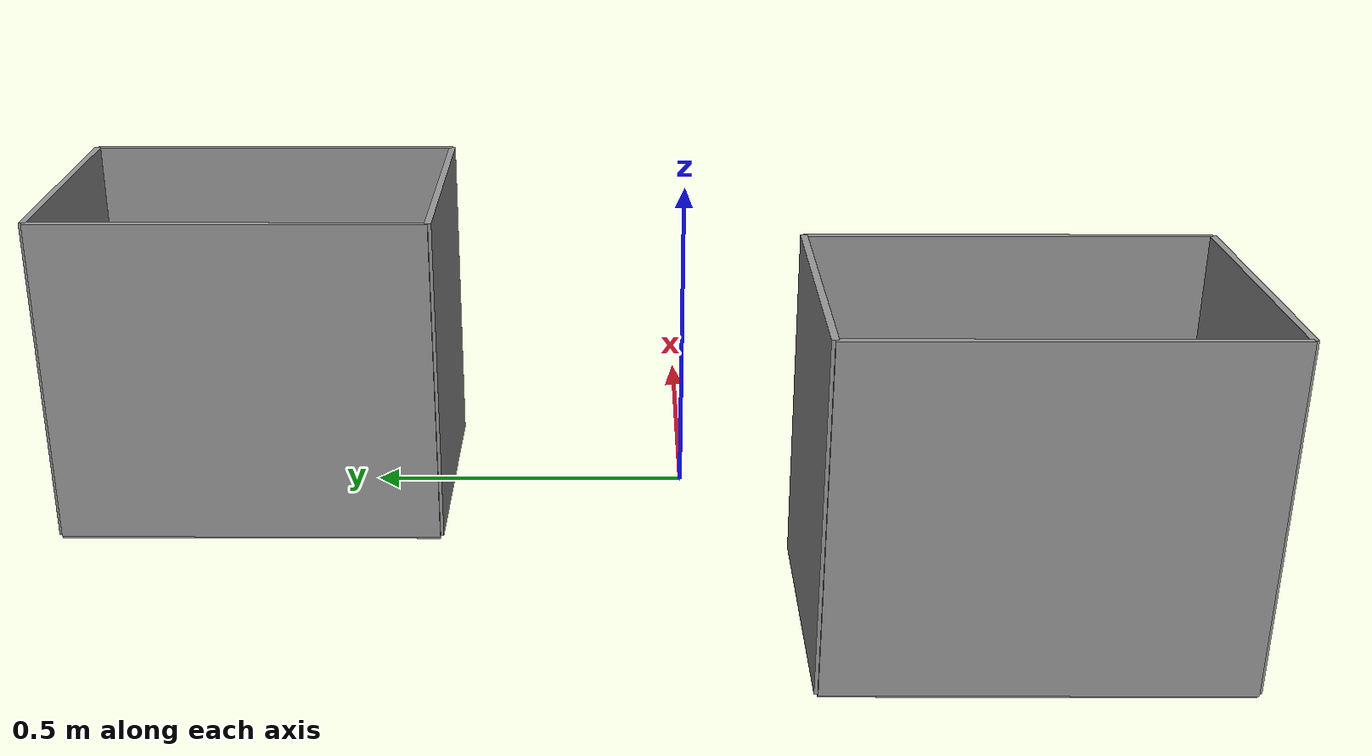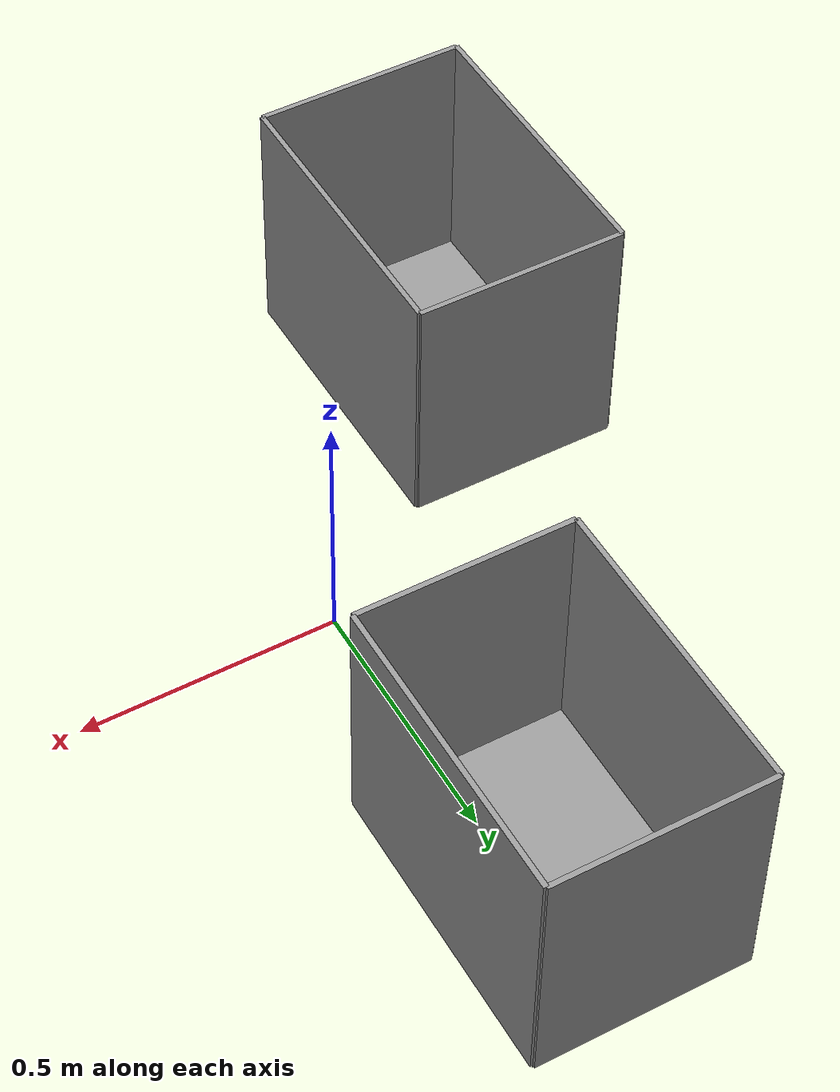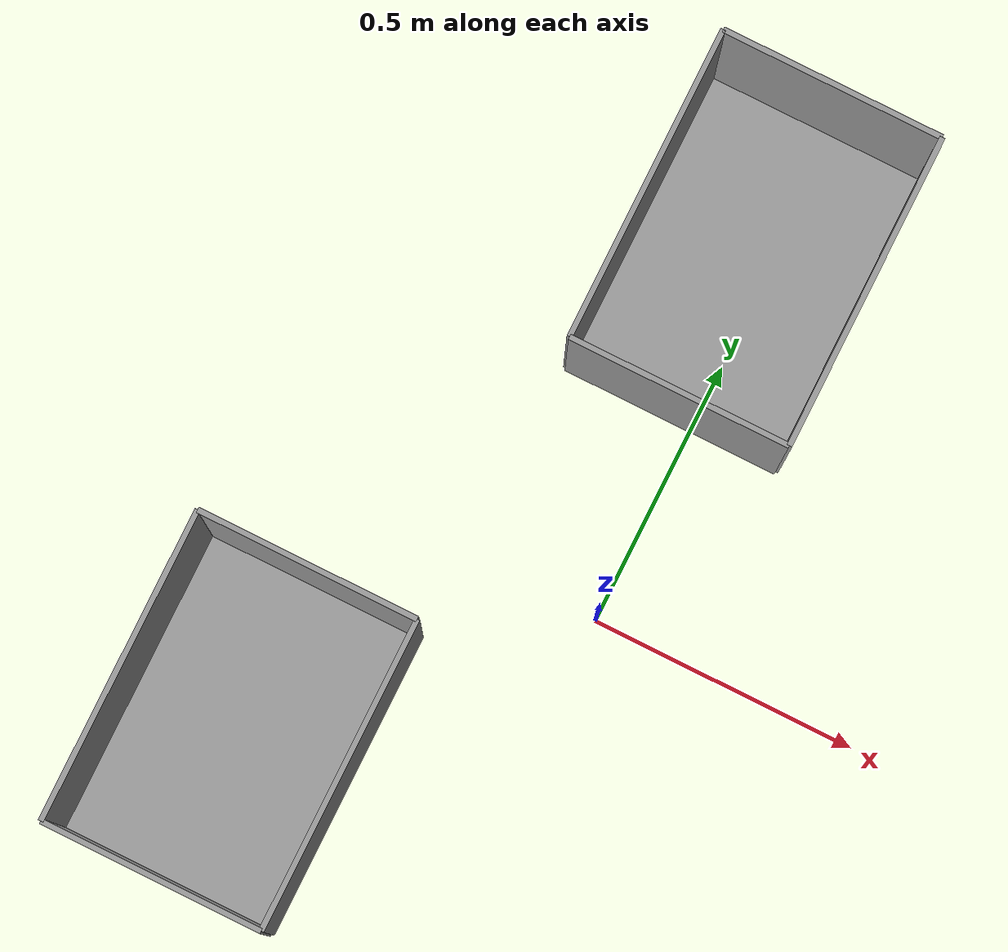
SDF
<?xml version="1.0" ?>
<sdf version="1.6">
  <world name="world_with_multiple_dustbins">

    <!-- Dustbin Model 1 -->
    <model name="hollow_dustbin_1">
      <pose>-0.466065 -0.450597 0.259370 0 0 0</pose>
      <static>true</static>
      <link name="bin_body">
        <!-- Bottom plate -->
        <collision name="bottom_collision">
          <pose>0 0 -0.25 0 0 0</pose>  <!-- Adjusted Z position for higher box -->
          <geometry>
            <box>
              <size>0.41 0.58 0.01</size>
            </box>
          </geometry>
        </collision>
        <visual name="bottom_visual">
          <pose>0 0 -0.25 0 0 0</pose>  <!-- Adjusted Z position for higher box -->
          <geometry>
            <box>
              <size>0.41 0.58 0.01</size>
            </box>
          </geometry>
          <material>
            <ambient>0.6 0.6 0.6 1.0</ambient>
            <diffuse>0.6 0.6 0.6 1.0</diffuse>
          </material>
        </visual>

        <!-- Right wall -->
        <collision name="right_wall_collision">
          <pose>0.205 0 0 0 0 0</pose>
          <geometry>
            <box>
              <size>0.01 0.58 0.5</size>  <!-- Increased height from 0.17 to 0.5 -->
            </box>
          </geometry>
        </collision>
        <visual name="right_wall_visual">
          <pose>0.205 0 0 0 0 0</pose>
          <geometry>
            <box>
              <size>0.01 0.58 0.5</size>  <!-- Increased height from 0.17 to 0.5 -->
            </box>
          </geometry>
          <material>
            <ambient>0.6 0.6 0.6 1.0</ambient>
            <diffuse>0.6 0.6 0.6 1.0</diffuse>
          </material>
        </visual>

        <!-- Left wall -->
        <collision name="left_wall_collision">
          <pose>-0.205 0 0 0 0 0</pose>
          <geometry>
            <box>
              <size>0.01 0.58 0.5</size>  <!-- Increased height from 0.17 to 0.5 -->
            </box>
          </geometry>
        </collision>
        <visual name="left_wall_visual">
          <pose>-0.205 0 0 0 0 0</pose>
          <geometry>
            <box>
              <size>0.01 0.58 0.5</size>  <!-- Increased height from 0.17 to 0.5 -->
            </box>
          </geometry>
          <material>
            <ambient>0.6 0.6 0.6 1.0</ambient>
            <diffuse>0.6 0.6 0.6 1.0</diffuse>
          </material>
        </visual>

        <!-- Front wall -->
        <collision name="front_wall_collision">
          <pose>0 0.29 0 0 0 0</pose>
          <geometry>
            <box>
              <size>0.41 0.01 0.5</size>  <!-- Increased height from 0.17 to 0.5 -->
            </box>
          </geometry>
        </collision>
        <visual name="front_wall_visual">
          <pose>0 0.29 0 0 0 0</pose>
          <geometry>
            <box>
              <size>0.41 0.01 0.5</size>  <!-- Increased height from 0.17 to 0.5 -->
            </box>
          </geometry>
          <material>
            <ambient>0.6 0.6 0.6 1.0</ambient>
            <diffuse>0.6 0.6 0.6 1.0</diffuse>
          </material>
        </visual>

        <!-- Back wall -->
        <collision name="back_wall_collision">
          <pose>0 -0.29 0 0 0 0</pose>
          <geometry>
            <box>
              <size>0.41 0.01 0.5</size>  <!-- Increased height from 0.17 to 0.5 -->
            </box>
          </geometry>
        </collision>
        <visual name="back_wall_visual">
          <pose>0 -0.29 0 0 0 0</pose>
          <geometry>
            <box>
              <size>0.41 0.01 0.5</size>  <!-- Increased height from 0.17 to 0.5 -->
            </box>
          </geometry>
          <material>
            <ambient>0.6 0.6 0.6 1.0</ambient>
            <diffuse>0.6 0.6 0.6 1.0</diffuse>
          </material>
        </visual>
      </link>
    </model>

    <!-- Copy the same structure for dustbin_2 and dustbin_3 with their respective poses -->

        <!-- Dustbin Model 1 -->
    <model name="hollow_dustbin_2">
      <pose>-0.039282 0.665452 0.270606 0 0 0</pose>
      <static>true</static>
      <link name="bin_body">
        <!-- Bottom plate -->
        <collision name="bottom_collision">
          <pose>0 0 -0.25 0 0 0</pose>  <!-- Adjusted Z position for higher box -->
          <geometry>
            <box>
              <size>0.41 0.58 0.01</size>
            </box>
          </geometry>
        </collision>
        <visual name="bottom_visual">
          <pose>0 0 -0.25 0 0 0</pose>  <!-- Adjusted Z position for higher box -->
          <geometry>
            <box>
              <size>0.41 0.58 0.01</size>
            </box>
          </geometry>
          <material>
            <ambient>0.6 0.6 0.6 1.0</ambient>
            <diffuse>0.6 0.6 0.6 1.0</diffuse>
          </material>
        </visual>

        <!-- Right wall -->
        <collision name="right_wall_collision">
          <pose>0.205 0 0 0 0 0</pose>
          <geometry>
            <box>
              <size>0.01 0.58 0.5</size>  <!-- Increased height from 0.17 to 0.5 -->
            </box>
          </geometry>
        </collision>
        <visual name="right_wall_visual">
          <pose>0.205 0 0 0 0 0</pose>
          <geometry>
            <box>
              <size>0.01 0.58 0.5</size>  <!-- Increased height from 0.17 to 0.5 -->
            </box>
          </geometry>
          <material>
            <ambient>0.6 0.6 0.6 1.0</ambient>
            <diffuse>0.6 0.6 0.6 1.0</diffuse>
          </material>
        </visual>

        <!-- Left wall -->
        <collision name="left_wall_collision">
          <pose>-0.205 0 0 0 0 0</pose>
          <geometry>
            <box>
              <size>0.01 0.58 0.5</size>  <!-- Increased height from 0.17 to 0.5 -->
            </box>
          </geometry>
        </collision>
        <visual name="left_wall_visual">
          <pose>-0.205 0 0 0 0 0</pose>
          <geometry>
            <box>
              <size>0.01 0.58 0.5</size>  <!-- Increased height from 0.17 to 0.5 -->
            </box>
          </geometry>
          <material>
            <ambient>0.6 0.6 0.6 1.0</ambient>
            <diffuse>0.6 0.6 0.6 1.0</diffuse>
          </material>
        </visual>

        <!-- Front wall -->
        <collision name="front_wall_collision">
          <pose>0 0.29 0 0 0 0</pose>
          <geometry>
            <box>
              <size>0.41 0.01 0.5</size>  <!-- Increased height from 0.17 to 0.5 -->
            </box>
          </geometry>
        </collision>
        <visual name="front_wall_visual">
          <pose>0 0.29 0 0 0 0</pose>
          <geometry>
            <box>
              <size>0.41 0.01 0.5</size>  <!-- Increased height from 0.17 to 0.5 -->
            </box>
          </geometry>
          <material>
            <ambient>0.6 0.6 0.6 1.0</ambient>
            <diffuse>0.6 0.6 0.6 1.0</diffuse>
          </material>
        </visual>

        <!-- Back wall -->
        <collision name="back_wall_collision">
          <pose>0 -0.29 0 0 0 0</pose>
          <geometry>
            <box>
              <size>0.41 0.01 0.5</size>  <!-- Increased height from 0.17 to 0.5 -->
            </box>
          </geometry>
        </collision>
        <visual name="back_wall_visual">
          <pose>0 -0.29 0 0 0 0</pose>
          <geometry>
            <box>
              <size>0.41 0.01 0.5</size>  <!-- Increased height from 0.17 to 0.5 -->
            </box>
          </geometry>
          <material>
            <ambient>0.6 0.6 0.6 1.0</ambient>
            <diffuse>0.6 0.6 0.6 1.0</diffuse>
          </material>
        </visual>
      </link>
    </model>

  </world>
</sdf>
